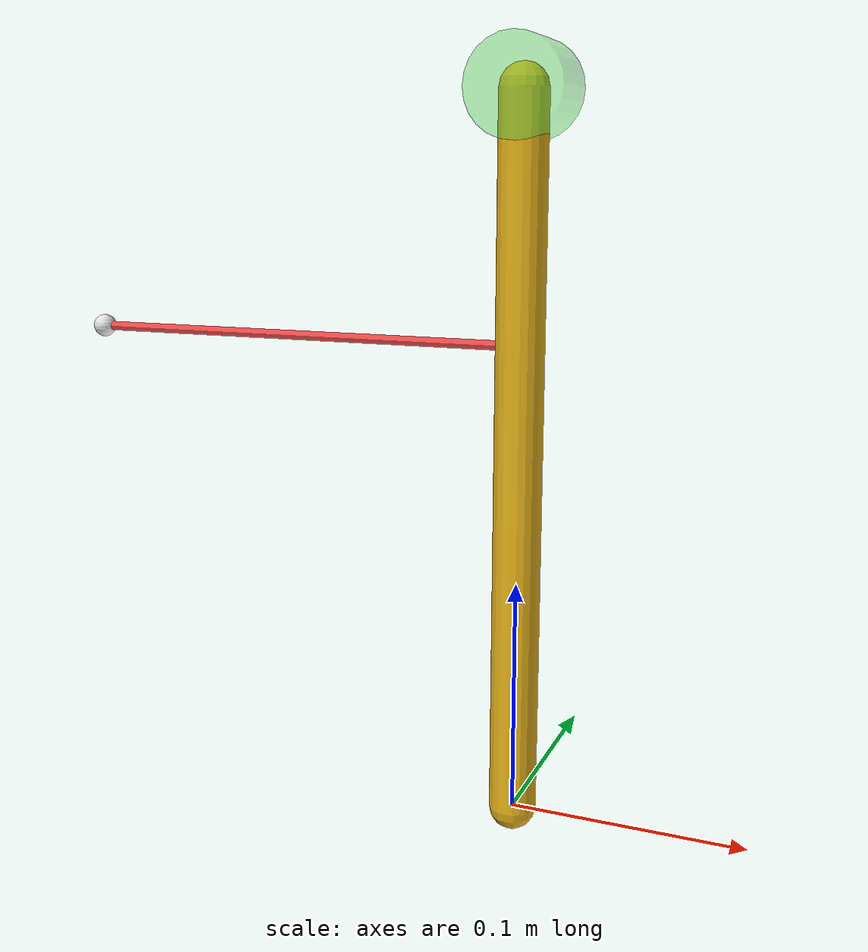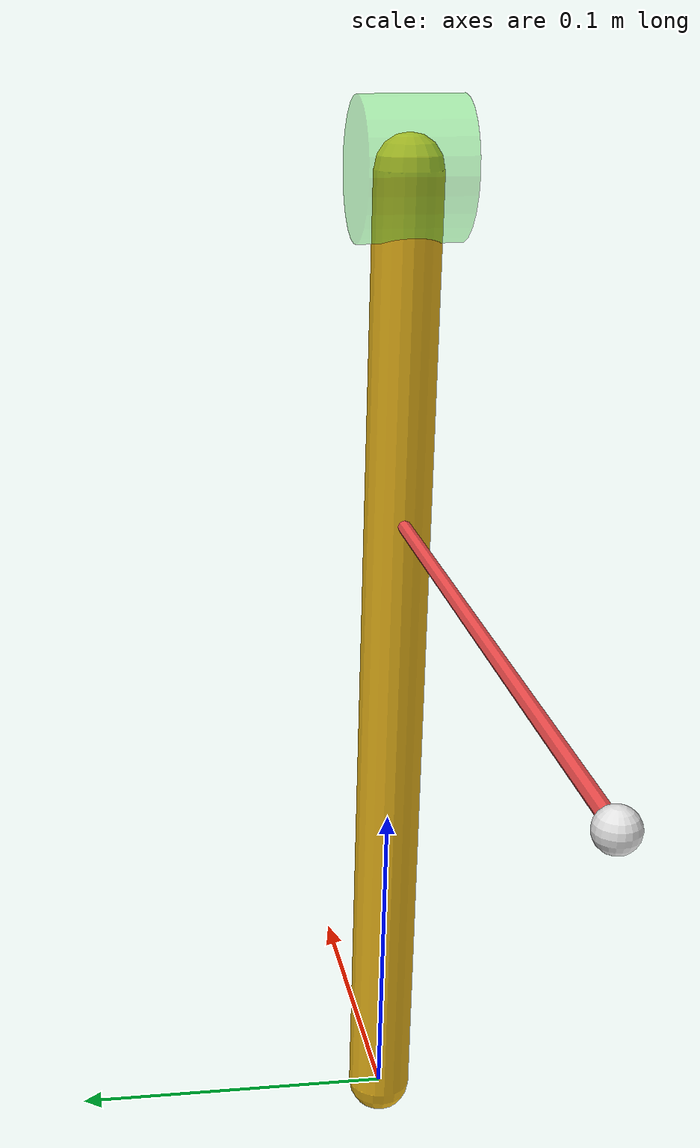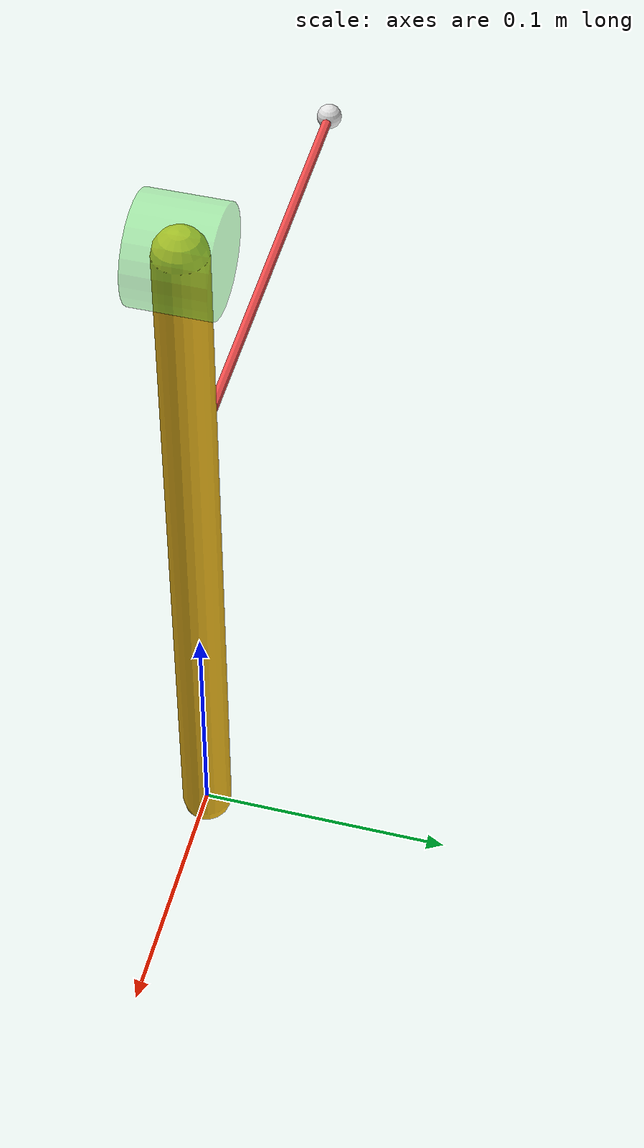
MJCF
<mujoco model="test">
    <compiler coordinate="global"/>

    <default>
        <geom rgba=".9 .7 .1 1" size="0.01"/>
        <site type="sphere" rgba=".9 .9 .9 1" size="0.005"/>
        <joint type="hinge" axis="0 1 0" limited="true" range="-90 90" solimplimit="0.95 0.95 0.1"/>
    </default>

    <visual>
        <headlight diffuse=".7 .7 .7"/>
    </visual>

    <worldbody>
        <site name="s0" pos="-.2 0 0.2"/>

        <body>
            <geom type="capsule" fromto="0.0 0 0.3  0.0 0 0"/>
            <geom name="g1" type="cylinder" fromto="0.0 0.015 0.3  0.0 -0.015 0.3" size="0.02" rgba=".3 .9 .3 .4"/>
            <joint pos="0 0 0.3"/>
            <site name="s2" pos="0 0 0.2"/>
        </body>
    </worldbody>

    <tendon>
        <spatial name="red" width="0.002" rgba=".95 .3 .3 1" limited="true" range="0 0.33">
            <site site="s0"/>
            <geom geom="g1"/>
            <site site="s2"/>
        </spatial>
    </tendon>
    <actuator>
        <motor name="motor" tendon="red" gear="1"/>
    </actuator>
</mujoco>
